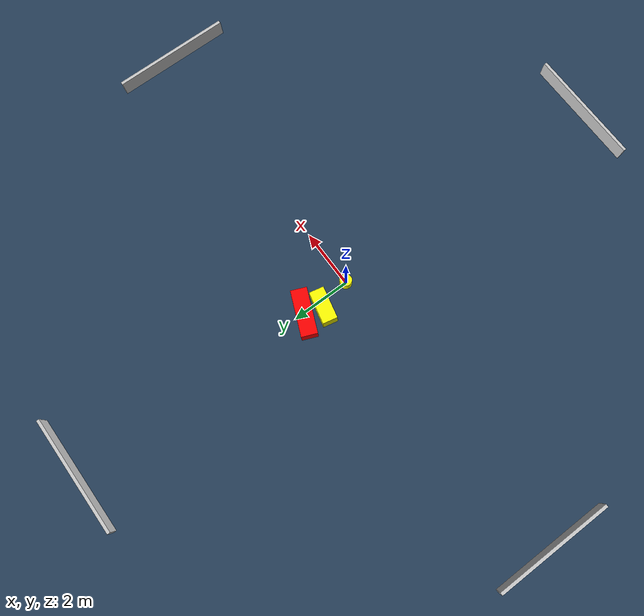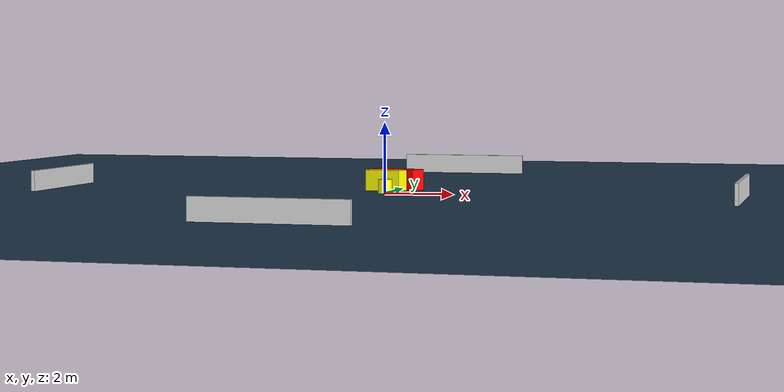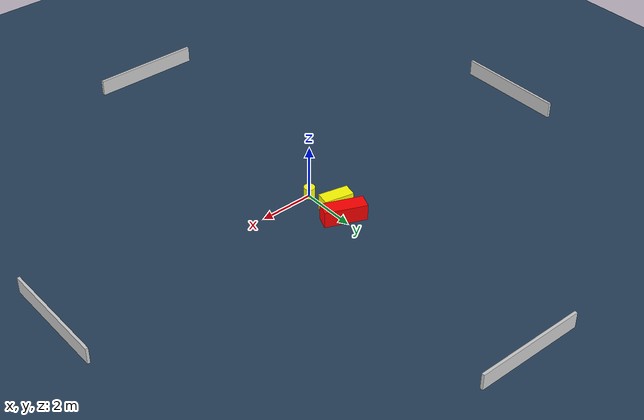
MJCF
<?xml version="1.0" ?>
<mujoco model="generated_environment">
  <option timestep="0.01" integrator="RK4" cone="elliptic"/>
  <default>
    <geom density="1"/>
  </default>
  <asset>
    <texture builtin="gradient" height="3072" name="skybox" rgb1="0.3 0.5 0.7" rgb2="0 0 0" type="skybox" width="512"/>
    <texture builtin="checker" height="300" name="groundplane" rgb1="0.2 0.3 0.4" rgb2="0.1 0.2 0.3" type="2d" width="300"/>
    <material name="groundplane" reflectance="0.2" texrepeat="5 5" texture="groundplane"/>
  </asset>
  <worldbody>
    <light dir="0 0 -1" directional="true" pos="0 0 1.5"/>
    <geom condim="3" friction="0.5 0.005 0.001" material="groundplane" name="floor" pos="0 0 0" size="0 0 0.05" type="plane"/>
    <body name="walls">
      <geom name="wall_1" condim="4" pos="-10.0 0.0 0.3" rgba="0.800000011920929 0.800000011920929 0.800000011920929 1.0" size="0.05 2.0 0.3" type="box"/>
      <geom name="wall_2" condim="4" pos="10.0 0.0 0.3" rgba="0.800000011920929 0.800000011920929 0.800000011920929 1.0" size="0.05 2.0 0.3" type="box"/>
      <geom name="wall_3" condim="4" pos="0.0 -10.0 0.3" rgba="0.800000011920929 0.800000011920929 0.800000011920929 1.0" size="2.0 0.05 0.3" type="box"/>
      <geom name="wall_4" condim="4" pos="0.0 10.0 0.3" rgba="0.800000011920929 0.800000011920929 0.800000011920929 1.0" size="2.0 0.05 0.3" type="box"/>
    </body>
    <body name="robot">
      <joint name="joint_x" type="slide" pos="0 0 0" axis="1 0 0"/>
      <joint name="joint_y" type="slide" pos="0 0 0" axis="0 1 0"/>
      <geom name="robot" type="cylinder" pos="0.0 0.0 0.2" size="0.2 0.2 0.0" mass="5.0" friction="1.0 0.005 0.0001" condim="4" rgba="1.0 1.0 0.0 1.0"/>
    </body>
    <body name="obstacle_1_movable">
      <geom name="obstacle_1_movable" condim="4" pos="-0.2663448012779355 1.0778676879769318 0.3" euler="0 0 257.55430926730423" friction="0.0 0.005 0.001" rgba="1.0 1.0 0.0 1.0" size="0.24669562564535077 0.5410460434573794 0.3" type="box" mass="0.1"/>
      <joint type="free"/>
    </body>
    <body name="obstacle_2_static">
      <geom name="obstacle_2_static" condim="4" pos="-0.0823658487437901 1.6851941974935585 0.3" euler="0 0 337.29392250655997" friction="0.0 0.005 0.001" rgba="1.0 0.0 0.0 1.0" size="0.75780339539208 0.26872172566712593 0.3" type="box"/>
    </body>
  </worldbody>
  <actuator>
    <motor name="actuator_x" joint="joint_x" gear="1" ctrlrange="-1 1"/>
    <motor name="actuator_y" joint="joint_y" gear="1" ctrlrange="-1 1"/>
  </actuator>
</mujoco>
